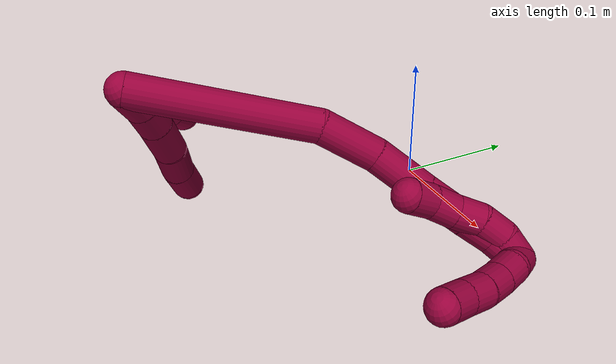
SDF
<sdf version="1.7">
 <world name="default">
  <model name="8">
   <static>0</static>
   <link name="8">
    <collision name="collision-cylinder-e_1_2_8">
     <pose>-0.002499 -0.002002 -0.010914 2.96015 -0.221554 -1.77051</pose>
     <geometry><cylinder><radius>0.0125</radius><length>0.022748</length></cylinder></geometry>
     <surface>
      <friction><ode><mu>1.16</mu><mu2>1.16</mu2><slip1>0</slip1><slip2>0</slip2></ode></friction>
      <contact><ode><kp>1e+06</kp><kd>1</kd><max_vel>0</max_vel><min_depth>0.001</min_depth></ode></contact>
     </surface>
    </collision>
    <visual name="visual-cylinder-e_1_2_8">
     <pose>-0.002499 -0.002002 -0.010914 2.96015 -0.221554 -1.77051</pose>
     <geometry><cylinder><radius>0.0125</radius><length>0.022748</length></cylinder></geometry>
     <material><ambient>0.584314 0 0.227451 1</ambient></material>
    </visual>
    <collision name="collision-cylinder-e_2_8_9">
     <pose>-0.006912 -0.007526 -0.032811 2.8313 -0.164346 -0.969365</pose>
     <geometry><cylinder><radius>0.0125</radius><length>0.023383</length></cylinder></geometry>
     <surface>
      <friction><ode><mu>1.16</mu><mu2>1.16</mu2><slip1>0</slip1><slip2>0</slip2></ode></friction>
      <contact><ode><kp>1e+06</kp><kd>1</kd><max_vel>0</max_vel><min_depth>0.001</min_depth></ode></contact>
     </surface>
    </collision>
    <visual name="visual-cylinder-e_2_8_9">
     <pose>-0.006912 -0.007526 -0.032811 2.8313 -0.164346 -0.969365</pose>
     <geometry><cylinder><radius>0.0125</radius><length>0.023383</length></cylinder></geometry>
     <material><ambient>0.584314 0 0.227451 1</ambient></material>
    </visual>
    <collision name="collision-cylinder-e_3_9_10">
     <pose>-0.011516 -0.017166 -0.059979 2.78017 -0.154346 -0.800744</pose>
     <geometry><cylinder><radius>0.0125</radius><length>0.035021</length></cylinder></geometry>
     <surface>
      <friction><ode><mu>1.16</mu><mu2>1.16</mu2><slip1>0</slip1><slip2>0</slip2></ode></friction>
      <contact><ode><kp>1e+06</kp><kd>1</kd><max_vel>0</max_vel><min_depth>0.001</min_depth></ode></contact>
     </surface>
    </collision>
    <visual name="visual-cylinder-e_3_9_10">
     <pose>-0.011516 -0.017166 -0.059979 2.78017 -0.154346 -0.800744</pose>
     <geometry><cylinder><radius>0.0125</radius><length>0.035021</length></cylinder></geometry>
     <material><ambient>0.584314 0 0.227451 1</ambient></material>
    </visual>
    <collision name="collision-cylinder-e_4_10_11">
     <pose>-0.017413 -0.031551 -0.091371 2.64367 -0.183075 -0.692988</pose>
     <geometry><cylinder><radius>0.0125</radius><length>0.035207</length></cylinder></geometry>
     <surface>
      <friction><ode><mu>1.16</mu><mu2>1.16</mu2><slip1>0</slip1><slip2>0</slip2></ode></friction>
      <contact><ode><kp>1e+06</kp><kd>1</kd><max_vel>0</max_vel><min_depth>0.001</min_depth></ode></contact>
     </surface>
    </collision>
    <visual name="visual-cylinder-e_4_10_11">
     <pose>-0.017413 -0.031551 -0.091371 2.64367 -0.183075 -0.692988</pose>
     <geometry><cylinder><radius>0.0125</radius><length>0.035207</length></cylinder></geometry>
     <material><ambient>0.584314 0 0.227451 1</ambient></material>
    </visual>
    <collision name="collision-cylinder-e_5_11_6">
     <pose>-0.02471 -0.046401 -0.121507 2.72631 -0.24576 -1.06043</pose>
     <geometry><cylinder><radius>0.0125</radius><length>0.033641</length></cylinder></geometry>
     <surface>
      <friction><ode><mu>1.16</mu><mu2>1.16</mu2><slip1>0</slip1><slip2>0</slip2></ode></friction>
      <contact><ode><kp>1e+06</kp><kd>1</kd><max_vel>0</max_vel><min_depth>0.001</min_depth></ode></contact>
     </surface>
    </collision>
    <visual name="visual-cylinder-e_5_11_6">
     <pose>-0.02471 -0.046401 -0.121507 2.72631 -0.24576 -1.06043</pose>
     <geometry><cylinder><radius>0.0125</radius><length>0.033641</length></cylinder></geometry>
     <material><ambient>0.584314 0 0.227451 1</ambient></material>
    </visual>
    <collision name="collision-cylinder-e_1_2_12">
     <pose>-0.020941 -0.011491 -0.031667 2.79351 -0.556176 -2.03759</pose>
     <geometry><cylinder><radius>0.0125</radius><length>0.079331</length></cylinder></geometry>
     <surface>
      <friction><ode><mu>1.16</mu><mu2>1.16</mu2><slip1>0</slip1><slip2>0</slip2></ode></friction>
      <contact><ode><kp>1e+06</kp><kd>1</kd><max_vel>0</max_vel><min_depth>0.001</min_depth></ode></contact>
     </surface>
    </collision>
    <visual name="visual-cylinder-e_1_2_12">
     <pose>-0.020941 -0.011491 -0.031667 2.79351 -0.556176 -2.03759</pose>
     <geometry><cylinder><radius>0.0125</radius><length>0.079331</length></cylinder></geometry>
     <material><ambient>0.584314 0 0.227451 1</ambient></material>
    </visual>
    <collision name="collision-cylinder-e_2_12_5">
     <pose>-0.047345 -0.024704 -0.071935 2.94387 -0.556953 -2.47375</pose>
     <geometry><cylinder><radius>0.0125</radius><length>0.020669</length></cylinder></geometry>
     <surface>
      <friction><ode><mu>1.16</mu><mu2>1.16</mu2><slip1>0</slip1><slip2>0</slip2></ode></friction>
      <contact><ode><kp>1e+06</kp><kd>1</kd><max_vel>0</max_vel><min_depth>0.001</min_depth></ode></contact>
     </surface>
    </collision>
    <visual name="visual-cylinder-e_2_12_5">
     <pose>-0.047345 -0.024704 -0.071935 2.94387 -0.556953 -2.47375</pose>
     <geometry><cylinder><radius>0.0125</radius><length>0.020669</length></cylinder></geometry>
     <material><ambient>0.584314 0 0.227451 1</ambient></material>
    </visual>
    <collision name="collision-cylinder-e_1_2_13">
     <pose>-0.007246 0.049036 -0.042707 -2.28733 -0.110973 0.242864</pose>
     <geometry><cylinder><radius>0.0125</radius><length>0.130857</length></cylinder></geometry>
     <surface>
      <friction><ode><mu>1.16</mu><mu2>1.16</mu2><slip1>0</slip1><slip2>0</slip2></ode></friction>
      <contact><ode><kp>1e+06</kp><kd>1</kd><max_vel>0</max_vel><min_depth>0.001</min_depth></ode></contact>
     </surface>
    </collision>
    <visual name="visual-cylinder-e_1_2_13">
     <pose>-0.007246 0.049036 -0.042707 -2.28733 -0.110973 0.242864</pose>
     <geometry><cylinder><radius>0.0125</radius><length>0.130857</length></cylinder></geometry>
     <material><ambient>0.584314 0 0.227451 1</ambient></material>
    </visual>
    <collision name="collision-cylinder-e_2_13_14">
     <pose>-0.011709 0.111792 -0.102334 -2.4602 0.127051 -0.355078</pose>
     <geometry><cylinder><radius>0.0125</radius><length>0.04392</length></cylinder></geometry>
     <surface>
      <friction><ode><mu>1.16</mu><mu2>1.16</mu2><slip1>0</slip1><slip2>0</slip2></ode></friction>
      <contact><ode><kp>1e+06</kp><kd>1</kd><max_vel>0</max_vel><min_depth>0.001</min_depth></ode></contact>
     </surface>
    </collision>
    <visual name="visual-cylinder-e_2_13_14">
     <pose>-0.011709 0.111792 -0.102334 -2.4602 0.127051 -0.355078</pose>
     <geometry><cylinder><radius>0.0125</radius><length>0.04392</length></cylinder></geometry>
     <material><ambient>0.584314 0 0.227451 1</ambient></material>
    </visual>
    <collision name="collision-cylinder-e_3_14_15">
     <pose>-0.002442 0.137777 -0.135401 -2.49204 0.309524 -0.867806</pose>
     <geometry><cylinder><radius>0.0125</radius><length>0.04258</length></cylinder></geometry>
     <surface>
      <friction><ode><mu>1.16</mu><mu2>1.16</mu2><slip1>0</slip1><slip2>0</slip2></ode></friction>
      <contact><ode><kp>1e+06</kp><kd>1</kd><max_vel>0</max_vel><min_depth>0.001</min_depth></ode></contact>
     </surface>
    </collision>
    <visual name="visual-cylinder-e_3_14_15">
     <pose>-0.002442 0.137777 -0.135401 -2.49204 0.309524 -0.867806</pose>
     <geometry><cylinder><radius>0.0125</radius><length>0.04258</length></cylinder></geometry>
     <material><ambient>0.584314 0 0.227451 1</ambient></material>
    </visual>
    <collision name="collision-cylinder-e_4_15_16">
     <pose>0.01042 0.161376 -0.163712 -2.39144 0.366269 -0.879398</pose>
     <geometry><cylinder><radius>0.0125</radius><length>0.03561</length></cylinder></geometry>
     <surface>
      <friction><ode><mu>1.16</mu><mu2>1.16</mu2><slip1>0</slip1><slip2>0</slip2></ode></friction>
      <contact><ode><kp>1e+06</kp><kd>1</kd><max_vel>0</max_vel><min_depth>0.001</min_depth></ode></contact>
     </surface>
    </collision>
    <visual name="visual-cylinder-e_4_15_16">
     <pose>0.01042 0.161376 -0.163712 -2.39144 0.366269 -0.879398</pose>
     <geometry><cylinder><radius>0.0125</radius><length>0.03561</length></cylinder></geometry>
     <material><ambient>0.584314 0 0.227451 1</ambient></material>
    </visual>
    <collision name="collision-cylinder-e_5_16_17">
     <pose>0.02047 0.180122 -0.183624 -2.37845 0.33 -0.786749</pose>
     <geometry><cylinder><radius>0.0125</radius><length>0.022671</length></cylinder></geometry>
     <surface>
      <friction><ode><mu>1.16</mu><mu2>1.16</mu2><slip1>0</slip1><slip2>0</slip2></ode></friction>
      <contact><ode><kp>1e+06</kp><kd>1</kd><max_vel>0</max_vel><min_depth>0.001</min_depth></ode></contact>
     </surface>
    </collision>
    <visual name="visual-cylinder-e_5_16_17">
     <pose>0.02047 0.180122 -0.183624 -2.37845 0.33 -0.786749</pose>
     <geometry><cylinder><radius>0.0125</radius><length>0.022671</length></cylinder></geometry>
     <material><ambient>0.584314 0 0.227451 1</ambient></material>
    </visual>
    <collision name="collision-cylinder-e_6_17_1">
     <pose>0.029171 0.194594 -0.199932 -2.45186 0.425498 -1.08283</pose>
     <geometry><cylinder><radius>0.0125</radius><length>0.02436</length></cylinder></geometry>
     <surface>
      <friction><ode><mu>1.16</mu><mu2>1.16</mu2><slip1>0</slip1><slip2>0</slip2></ode></friction>
      <contact><ode><kp>1e+06</kp><kd>1</kd><max_vel>0</max_vel><min_depth>0.001</min_depth></ode></contact>
     </surface>
    </collision>
    <visual name="visual-cylinder-e_6_17_1">
     <pose>0.029171 0.194594 -0.199932 -2.45186 0.425498 -1.08283</pose>
     <geometry><cylinder><radius>0.0125</radius><length>0.02436</length></cylinder></geometry>
     <material><ambient>0.584314 0 0.227451 1</ambient></material>
    </visual>
    <collision name="collision-cylinder-e_1_1_18">
     <pose>0.029207 0.198258 -0.200518 0.402627 -0.522618 -0.109042</pose>
     <geometry><cylinder><radius>0.0125</radius><length>0.02</length></cylinder></geometry>
     <surface>
      <friction><ode><mu>1.16</mu><mu2>1.16</mu2><slip1>0</slip1><slip2>0</slip2></ode></friction>
      <contact><ode><kp>1e+06</kp><kd>1</kd><max_vel>0</max_vel><min_depth>0.001</min_depth></ode></contact>
     </surface>
    </collision>
    <visual name="visual-cylinder-e_1_1_18">
     <pose>0.029207 0.198258 -0.200518 0.402627 -0.522618 -0.109042</pose>
     <geometry><cylinder><radius>0.0125</radius><length>0.02</length></cylinder></geometry>
     <material><ambient>0.584314 0 0.227451 1</ambient></material>
    </visual>
    <collision name="collision-cylinder-e_2_18_19">
     <pose>0.021336 0.189176 -0.184841 0.635813 -0.292138 -0.096747</pose>
     <geometry><cylinder><radius>0.0125</radius><length>0.02</length></cylinder></geometry>
     <surface>
      <friction><ode><mu>1.16</mu><mu2>1.16</mu2><slip1>0</slip1><slip2>0</slip2></ode></friction>
      <contact><ode><kp>1e+06</kp><kd>1</kd><max_vel>0</max_vel><min_depth>0.001</min_depth></ode></contact>
     </surface>
    </collision>
    <visual name="visual-cylinder-e_2_18_19">
     <pose>0.021336 0.189176 -0.184841 0.635813 -0.292138 -0.096747</pose>
     <geometry><cylinder><radius>0.0125</radius><length>0.02</length></cylinder></geometry>
     <material><ambient>0.584314 0 0.227451 1</ambient></material>
    </visual>
    <collision name="collision-cylinder-e_3_19_20">
     <pose>0.01781 0.176133 -0.170393 0.828829 -0.064608 -0.028429</pose>
     <geometry><cylinder><radius>0.0125</radius><length>0.02</length></cylinder></geometry>
     <surface>
      <friction><ode><mu>1.16</mu><mu2>1.16</mu2><slip1>0</slip1><slip2>0</slip2></ode></friction>
      <contact><ode><kp>1e+06</kp><kd>1</kd><max_vel>0</max_vel><min_depth>0.001</min_depth></ode></contact>
     </surface>
    </collision>
    <visual name="visual-cylinder-e_3_19_20">
     <pose>0.01781 0.176133 -0.170393 0.828829 -0.064608 -0.028429</pose>
     <geometry><cylinder><radius>0.0125</radius><length>0.02</length></cylinder></geometry>
     <material><ambient>0.584314 0 0.227451 1</ambient></material>
    </visual>
    <collision name="collision-cylinder-e_4_20_21">
     <pose>0.016886 0.162677 -0.155731 0.656416 -0.027814 -0.009472</pose>
     <geometry><cylinder><radius>0.0125</radius><length>0.02</length></cylinder></geometry>
     <surface>
      <friction><ode><mu>1.16</mu><mu2>1.16</mu2><slip1>0</slip1><slip2>0</slip2></ode></friction>
      <contact><ode><kp>1e+06</kp><kd>1</kd><max_vel>0</max_vel><min_depth>0.001</min_depth></ode></contact>
     </surface>
    </collision>
    <visual name="visual-cylinder-e_4_20_21">
     <pose>0.016886 0.162677 -0.155731 0.656416 -0.027814 -0.009472</pose>
     <geometry><cylinder><radius>0.0125</radius><length>0.02</length></cylinder></geometry>
     <material><ambient>0.584314 0 0.227451 1</ambient></material>
    </visual>
    <collision name="collision-cylinder-e_5_21_4">
     <pose>0.019248 0.152153 -0.139241 0.476451 0.26717 0.065244</pose>
     <geometry><cylinder><radius>0.0125</radius><length>0.02</length></cylinder></geometry>
     <surface>
      <friction><ode><mu>1.16</mu><mu2>1.16</mu2><slip1>0</slip1><slip2>0</slip2></ode></friction>
      <contact><ode><kp>1e+06</kp><kd>1</kd><max_vel>0</max_vel><min_depth>0.001</min_depth></ode></contact>
     </surface>
    </collision>
    <visual name="visual-cylinder-e_5_21_4">
     <pose>0.019248 0.152153 -0.139241 0.476451 0.26717 0.065244</pose>
     <geometry><cylinder><radius>0.0125</radius><length>0.02</length></cylinder></geometry>
     <material><ambient>0.584314 0 0.227451 1</ambient></material>
    </visual>
    <collision name="collision-cylinder-e_1_1_22">
     <pose>0.04109 0.201013 -0.201272 0.088409 0.760274 0.035345</pose>
     <geometry><cylinder><radius>0.0125</radius><length>0.02</length></cylinder></geometry>
     <surface>
      <friction><ode><mu>1.16</mu><mu2>1.16</mu2><slip1>0</slip1><slip2>0</slip2></ode></friction>
      <contact><ode><kp>1e+06</kp><kd>1</kd><max_vel>0</max_vel><min_depth>0.001</min_depth></ode></contact>
     </surface>
    </collision>
    <visual name="visual-cylinder-e_1_1_22">
     <pose>0.04109 0.201013 -0.201272 0.088409 0.760274 0.035345</pose>
     <geometry><cylinder><radius>0.0125</radius><length>0.02</length></cylinder></geometry>
     <material><ambient>0.584314 0 0.227451 1</ambient></material>
    </visual>
    <collision name="collision-cylinder-e_2_22_23">
     <pose>0.055401 0.196772 -0.1884 0.567213 0.836033 0.257501</pose>
     <geometry><cylinder><radius>0.0125</radius><length>0.02</length></cylinder></geometry>
     <surface>
      <friction><ode><mu>1.16</mu><mu2>1.16</mu2><slip1>0</slip1><slip2>0</slip2></ode></friction>
      <contact><ode><kp>1e+06</kp><kd>1</kd><max_vel>0</max_vel><min_depth>0.001</min_depth></ode></contact>
     </surface>
    </collision>
    <visual name="visual-cylinder-e_2_22_23">
     <pose>0.055401 0.196772 -0.1884 0.567213 0.836033 0.257501</pose>
     <geometry><cylinder><radius>0.0125</radius><length>0.02</length></cylinder></geometry>
     <material><ambient>0.584314 0 0.227451 1</ambient></material>
    </visual>
    <collision name="collision-cylinder-e_3_23_24">
     <pose>0.069671 0.189729 -0.176324 0.491863 0.754597 0.198292</pose>
     <geometry><cylinder><radius>0.0125</radius><length>0.02</length></cylinder></geometry>
     <surface>
      <friction><ode><mu>1.16</mu><mu2>1.16</mu2><slip1>0</slip1><slip2>0</slip2></ode></friction>
      <contact><ode><kp>1e+06</kp><kd>1</kd><max_vel>0</max_vel><min_depth>0.001</min_depth></ode></contact>
     </surface>
    </collision>
    <visual name="visual-cylinder-e_3_23_24">
     <pose>0.069671 0.189729 -0.176324 0.491863 0.754597 0.198292</pose>
     <geometry><cylinder><radius>0.0125</radius><length>0.02</length></cylinder></geometry>
     <material><ambient>0.584314 0 0.227451 1</ambient></material>
    </visual>
    <collision name="collision-cylinder-e_4_24_25">
     <pose>0.082266 0.181976 -0.162945 0.554906 0.611978 0.179459</pose>
     <geometry><cylinder><radius>0.0125</radius><length>0.02</length></cylinder></geometry>
     <surface>
      <friction><ode><mu>1.16</mu><mu2>1.16</mu2><slip1>0</slip1><slip2>0</slip2></ode></friction>
      <contact><ode><kp>1e+06</kp><kd>1</kd><max_vel>0</max_vel><min_depth>0.001</min_depth></ode></contact>
     </surface>
    </collision>
    <visual name="visual-cylinder-e_4_24_25">
     <pose>0.082266 0.181976 -0.162945 0.554906 0.611978 0.179459</pose>
     <geometry><cylinder><radius>0.0125</radius><length>0.02</length></cylinder></geometry>
     <material><ambient>0.584314 0 0.227451 1</ambient></material>
    </visual>
    <collision name="collision-cylinder-e_5_25_3">
     <pose>0.093948 0.17417 -0.148739 0.449028 0.635741 0.149994</pose>
     <geometry><cylinder><radius>0.0125</radius><length>0.02</length></cylinder></geometry>
     <surface>
      <friction><ode><mu>1.16</mu><mu2>1.16</mu2><slip1>0</slip1><slip2>0</slip2></ode></friction>
      <contact><ode><kp>1e+06</kp><kd>1</kd><max_vel>0</max_vel><min_depth>0.001</min_depth></ode></contact>
     </surface>
    </collision>
    <visual name="visual-cylinder-e_5_25_3">
     <pose>0.093948 0.17417 -0.148739 0.449028 0.635741 0.149994</pose>
     <geometry><cylinder><radius>0.0125</radius><length>0.02</length></cylinder></geometry>
     <material><ambient>0.584314 0 0.227451 1</ambient></material>
    </visual>
    <collision name="collision-sphere-3">
     <pose>0.099886 0.170678 -0.141491 0 -0 0</pose>
     <geometry><sphere><radius>0.0125</radius></sphere></geometry>
     <surface>
      <friction><ode><mu>1.16</mu><mu2>1.16</mu2><slip1>0</slip1><slip2>0</slip2></ode></friction>
      <contact><ode><kp>1e+06</kp><kd>1</kd><max_vel>0</max_vel><min_depth>0.001</min_depth></ode></contact>
     </surface>
    </collision>
    <visual name="visual-sphere-3">
     <pose>0.099886 0.170678 -0.141491 0 -0 0</pose>
     <geometry><sphere><radius>0.0125</radius></sphere></geometry>
     <material><ambient>0.584314 0 0.227451 1</ambient></material>
    </visual>
    <collision name="collision-sphere-25">
     <pose>0.08801 0.177663 -0.155988 0 -0 0</pose>
     <geometry><sphere><radius>0.0125</radius></sphere></geometry>
     <surface>
      <friction><ode><mu>1.16</mu><mu2>1.16</mu2><slip1>0</slip1><slip2>0</slip2></ode></friction>
      <contact><ode><kp>1e+06</kp><kd>1</kd><max_vel>0</max_vel><min_depth>0.001</min_depth></ode></contact>
     </surface>
    </collision>
    <visual name="visual-sphere-25">
     <pose>0.08801 0.177663 -0.155988 0 -0 0</pose>
     <geometry><sphere><radius>0.0125</radius></sphere></geometry>
     <material><ambient>0.584314 0 0.227451 1</ambient></material>
    </visual>
    <collision name="collision-sphere-24">
     <pose>0.076521 0.186288 -0.169902 0 -0 0</pose>
     <geometry><sphere><radius>0.0125</radius></sphere></geometry>
     <surface>
      <friction><ode><mu>1.16</mu><mu2>1.16</mu2><slip1>0</slip1><slip2>0</slip2></ode></friction>
      <contact><ode><kp>1e+06</kp><kd>1</kd><max_vel>0</max_vel><min_depth>0.001</min_depth></ode></contact>
     </surface>
    </collision>
    <visual name="visual-sphere-24">
     <pose>0.076521 0.186288 -0.169902 0 -0 0</pose>
     <geometry><sphere><radius>0.0125</radius></sphere></geometry>
     <material><ambient>0.584314 0 0.227451 1</ambient></material>
    </visual>
    <collision name="collision-sphere-23">
     <pose>0.062821 0.19317 -0.182746 0 -0 0</pose>
     <geometry><sphere><radius>0.0125</radius></sphere></geometry>
     <surface>
      <friction><ode><mu>1.16</mu><mu2>1.16</mu2><slip1>0</slip1><slip2>0</slip2></ode></friction>
      <contact><ode><kp>1e+06</kp><kd>1</kd><max_vel>0</max_vel><min_depth>0.001</min_depth></ode></contact>
     </surface>
    </collision>
    <visual name="visual-sphere-23">
     <pose>0.062821 0.19317 -0.182746 0 -0 0</pose>
     <geometry><sphere><radius>0.0125</radius></sphere></geometry>
     <material><ambient>0.584314 0 0.227451 1</ambient></material>
    </visual>
    <collision name="collision-sphere-22">
     <pose>0.047981 0.200374 -0.194054 0 -0 0</pose>
     <geometry><sphere><radius>0.0125</radius></sphere></geometry>
     <surface>
      <friction><ode><mu>1.16</mu><mu2>1.16</mu2><slip1>0</slip1><slip2>0</slip2></ode></friction>
      <contact><ode><kp>1e+06</kp><kd>1</kd><max_vel>0</max_vel><min_depth>0.001</min_depth></ode></contact>
     </surface>
    </collision>
    <visual name="visual-sphere-22">
     <pose>0.047981 0.200374 -0.194054 0 -0 0</pose>
     <geometry><sphere><radius>0.0125</radius></sphere></geometry>
     <material><ambient>0.584314 0 0.227451 1</ambient></material>
    </visual>
    <collision name="collision-sphere-4">
     <pose>0.021888 0.147729 -0.13067 0 -0 0</pose>
     <geometry><sphere><radius>0.0125</radius></sphere></geometry>
     <surface>
      <friction><ode><mu>1.16</mu><mu2>1.16</mu2><slip1>0</slip1><slip2>0</slip2></ode></friction>
      <contact><ode><kp>1e+06</kp><kd>1</kd><max_vel>0</max_vel><min_depth>0.001</min_depth></ode></contact>
     </surface>
    </collision>
    <visual name="visual-sphere-4">
     <pose>0.021888 0.147729 -0.13067 0 -0 0</pose>
     <geometry><sphere><radius>0.0125</radius></sphere></geometry>
     <material><ambient>0.584314 0 0.227451 1</ambient></material>
    </visual>
    <collision name="collision-sphere-21">
     <pose>0.016608 0.156576 -0.147812 0 -0 0</pose>
     <geometry><sphere><radius>0.0125</radius></sphere></geometry>
     <surface>
      <friction><ode><mu>1.16</mu><mu2>1.16</mu2><slip1>0</slip1><slip2>0</slip2></ode></friction>
      <contact><ode><kp>1e+06</kp><kd>1</kd><max_vel>0</max_vel><min_depth>0.001</min_depth></ode></contact>
     </surface>
    </collision>
    <visual name="visual-sphere-21">
     <pose>0.016608 0.156576 -0.147812 0 -0 0</pose>
     <geometry><sphere><radius>0.0125</radius></sphere></geometry>
     <material><ambient>0.584314 0 0.227451 1</ambient></material>
    </visual>
    <collision name="collision-sphere-20">
     <pose>0.017164 0.168777 -0.163649 0 -0 0</pose>
     <geometry><sphere><radius>0.0125</radius></sphere></geometry>
     <surface>
      <friction><ode><mu>1.16</mu><mu2>1.16</mu2><slip1>0</slip1><slip2>0</slip2></ode></friction>
      <contact><ode><kp>1e+06</kp><kd>1</kd><max_vel>0</max_vel><min_depth>0.001</min_depth></ode></contact>
     </surface>
    </collision>
    <visual name="visual-sphere-20">
     <pose>0.017164 0.168777 -0.163649 0 -0 0</pose>
     <geometry><sphere><radius>0.0125</radius></sphere></geometry>
     <material><ambient>0.584314 0 0.227451 1</ambient></material>
    </visual>
    <collision name="collision-sphere-6">
     <pose>-0.028803 -0.052983 -0.136435 0 -0 0</pose>
     <geometry><sphere><radius>0.0125</radius></sphere></geometry>
     <surface>
      <friction><ode><mu>1.16</mu><mu2>1.16</mu2><slip1>0</slip1><slip2>0</slip2></ode></friction>
      <contact><ode><kp>1e+06</kp><kd>1</kd><max_vel>0</max_vel><min_depth>0.001</min_depth></ode></contact>
     </surface>
    </collision>
    <visual name="visual-sphere-6">
     <pose>-0.028803 -0.052983 -0.136435 0 -0 0</pose>
     <geometry><sphere><radius>0.0125</radius></sphere></geometry>
     <material><ambient>0.584314 0 0.227451 1</ambient></material>
    </visual>
    <collision name="collision-sphere-11">
     <pose>-0.020618 -0.039818 -0.106578 0 -0 0</pose>
     <geometry><sphere><radius>0.0125</radius></sphere></geometry>
     <surface>
      <friction><ode><mu>1.16</mu><mu2>1.16</mu2><slip1>0</slip1><slip2>0</slip2></ode></friction>
      <contact><ode><kp>1e+06</kp><kd>1</kd><max_vel>0</max_vel><min_depth>0.001</min_depth></ode></contact>
     </surface>
    </collision>
    <visual name="visual-sphere-11">
     <pose>-0.020618 -0.039818 -0.106578 0 -0 0</pose>
     <geometry><sphere><radius>0.0125</radius></sphere></geometry>
     <material><ambient>0.584314 0 0.227451 1</ambient></material>
    </visual>
    <collision name="collision-sphere-10">
     <pose>-0.014208 -0.023285 -0.076163 0 -0 0</pose>
     <geometry><sphere><radius>0.0125</radius></sphere></geometry>
     <surface>
      <friction><ode><mu>1.16</mu><mu2>1.16</mu2><slip1>0</slip1><slip2>0</slip2></ode></friction>
      <contact><ode><kp>1e+06</kp><kd>1</kd><max_vel>0</max_vel><min_depth>0.001</min_depth></ode></contact>
     </surface>
    </collision>
    <visual name="visual-sphere-10">
     <pose>-0.014208 -0.023285 -0.076163 0 -0 0</pose>
     <geometry><sphere><radius>0.0125</radius></sphere></geometry>
     <material><ambient>0.584314 0 0.227451 1</ambient></material>
    </visual>
    <collision name="collision-sphere-9">
     <pose>-0.008825 -0.011048 -0.043795 0 -0 0</pose>
     <geometry><sphere><radius>0.0125</radius></sphere></geometry>
     <surface>
      <friction><ode><mu>1.16</mu><mu2>1.16</mu2><slip1>0</slip1><slip2>0</slip2></ode></friction>
      <contact><ode><kp>1e+06</kp><kd>1</kd><max_vel>0</max_vel><min_depth>0.001</min_depth></ode></contact>
     </surface>
    </collision>
    <visual name="visual-sphere-9">
     <pose>-0.008825 -0.011048 -0.043795 0 -0 0</pose>
     <geometry><sphere><radius>0.0125</radius></sphere></geometry>
     <material><ambient>0.584314 0 0.227451 1</ambient></material>
    </visual>
    <collision name="collision-sphere-2">
     <geometry><sphere><radius>0.0125</radius></sphere></geometry>
     <surface>
      <friction><ode><mu>1.16</mu><mu2>1.16</mu2><slip1>0</slip1><slip2>0</slip2></ode></friction>
      <contact><ode><kp>1e+06</kp><kd>1</kd><max_vel>0</max_vel><min_depth>0.001</min_depth></ode></contact>
     </surface>
    </collision>
    <visual name="visual-sphere-2">
     <geometry><sphere><radius>0.0125</radius></sphere></geometry>
     <material><ambient>0.584314 0 0.227451 1</ambient></material>
    </visual>
    <collision name="collision-sphere-19">
     <pose>0.018456 0.183489 -0.177136 0 -0 0</pose>
     <geometry><sphere><radius>0.0125</radius></sphere></geometry>
     <surface>
      <friction><ode><mu>1.16</mu><mu2>1.16</mu2><slip1>0</slip1><slip2>0</slip2></ode></friction>
      <contact><ode><kp>1e+06</kp><kd>1</kd><max_vel>0</max_vel><min_depth>0.001</min_depth></ode></contact>
     </surface>
    </collision>
    <visual name="visual-sphere-19">
     <pose>0.018456 0.183489 -0.177136 0 -0 0</pose>
     <geometry><sphere><radius>0.0125</radius></sphere></geometry>
     <material><ambient>0.584314 0 0.227451 1</ambient></material>
    </visual>
    <collision name="collision-sphere-8">
     <pose>-0.004999 -0.004005 -0.021828 0 -0 0</pose>
     <geometry><sphere><radius>0.0125</radius></sphere></geometry>
     <surface>
      <friction><ode><mu>1.16</mu><mu2>1.16</mu2><slip1>0</slip1><slip2>0</slip2></ode></friction>
      <contact><ode><kp>1e+06</kp><kd>1</kd><max_vel>0</max_vel><min_depth>0.001</min_depth></ode></contact>
     </surface>
    </collision>
    <visual name="visual-sphere-8">
     <pose>-0.004999 -0.004005 -0.021828 0 -0 0</pose>
     <geometry><sphere><radius>0.0125</radius></sphere></geometry>
     <material><ambient>0.584314 0 0.227451 1</ambient></material>
    </visual>
    <collision name="collision-sphere-12">
     <pose>-0.041882 -0.022981 -0.063334 0 -0 0</pose>
     <geometry><sphere><radius>0.0125</radius></sphere></geometry>
     <surface>
      <friction><ode><mu>1.16</mu><mu2>1.16</mu2><slip1>0</slip1><slip2>0</slip2></ode></friction>
      <contact><ode><kp>1e+06</kp><kd>1</kd><max_vel>0</max_vel><min_depth>0.001</min_depth></ode></contact>
     </surface>
    </collision>
    <visual name="visual-sphere-12">
     <pose>-0.041882 -0.022981 -0.063334 0 -0 0</pose>
     <geometry><sphere><radius>0.0125</radius></sphere></geometry>
     <material><ambient>0.584314 0 0.227451 1</ambient></material>
    </visual>
    <collision name="collision-sphere-5">
     <pose>-0.052808 -0.026428 -0.080537 0 -0 0</pose>
     <geometry><sphere><radius>0.0125</radius></sphere></geometry>
     <surface>
      <friction><ode><mu>1.16</mu><mu2>1.16</mu2><slip1>0</slip1><slip2>0</slip2></ode></friction>
      <contact><ode><kp>1e+06</kp><kd>1</kd><max_vel>0</max_vel><min_depth>0.001</min_depth></ode></contact>
     </surface>
    </collision>
    <visual name="visual-sphere-5">
     <pose>-0.052808 -0.026428 -0.080537 0 -0 0</pose>
     <geometry><sphere><radius>0.0125</radius></sphere></geometry>
     <material><ambient>0.584314 0 0.227451 1</ambient></material>
    </visual>
    <collision name="collision-sphere-13">
     <pose>-0.014492 0.098071 -0.085415 0 -0 0</pose>
     <geometry><sphere><radius>0.0125</radius></sphere></geometry>
     <surface>
      <friction><ode><mu>1.16</mu><mu2>1.16</mu2><slip1>0</slip1><slip2>0</slip2></ode></friction>
      <contact><ode><kp>1e+06</kp><kd>1</kd><max_vel>0</max_vel><min_depth>0.001</min_depth></ode></contact>
     </surface>
    </collision>
    <visual name="visual-sphere-13">
     <pose>-0.014492 0.098071 -0.085415 0 -0 0</pose>
     <geometry><sphere><radius>0.0125</radius></sphere></geometry>
     <material><ambient>0.584314 0 0.227451 1</ambient></material>
    </visual>
    <collision name="collision-sphere-14">
     <pose>-0.008927 0.125512 -0.119252 0 -0 0</pose>
     <geometry><sphere><radius>0.0125</radius></sphere></geometry>
     <surface>
      <friction><ode><mu>1.16</mu><mu2>1.16</mu2><slip1>0</slip1><slip2>0</slip2></ode></friction>
      <contact><ode><kp>1e+06</kp><kd>1</kd><max_vel>0</max_vel><min_depth>0.001</min_depth></ode></contact>
     </surface>
    </collision>
    <visual name="visual-sphere-14">
     <pose>-0.008927 0.125512 -0.119252 0 -0 0</pose>
     <geometry><sphere><radius>0.0125</radius></sphere></geometry>
     <material><ambient>0.584314 0 0.227451 1</ambient></material>
    </visual>
    <collision name="collision-sphere-15">
     <pose>0.004043 0.150042 -0.15155 0 -0 0</pose>
     <geometry><sphere><radius>0.0125</radius></sphere></geometry>
     <surface>
      <friction><ode><mu>1.16</mu><mu2>1.16</mu2><slip1>0</slip1><slip2>0</slip2></ode></friction>
      <contact><ode><kp>1e+06</kp><kd>1</kd><max_vel>0</max_vel><min_depth>0.001</min_depth></ode></contact>
     </surface>
    </collision>
    <visual name="visual-sphere-15">
     <pose>0.004043 0.150042 -0.15155 0 -0 0</pose>
     <geometry><sphere><radius>0.0125</radius></sphere></geometry>
     <material><ambient>0.584314 0 0.227451 1</ambient></material>
    </visual>
    <collision name="collision-sphere-16">
     <pose>0.016797 0.172709 -0.175874 0 -0 0</pose>
     <geometry><sphere><radius>0.0125</radius></sphere></geometry>
     <surface>
      <friction><ode><mu>1.16</mu><mu2>1.16</mu2><slip1>0</slip1><slip2>0</slip2></ode></friction>
      <contact><ode><kp>1e+06</kp><kd>1</kd><max_vel>0</max_vel><min_depth>0.001</min_depth></ode></contact>
     </surface>
    </collision>
    <visual name="visual-sphere-16">
     <pose>0.016797 0.172709 -0.175874 0 -0 0</pose>
     <geometry><sphere><radius>0.0125</radius></sphere></geometry>
     <material><ambient>0.584314 0 0.227451 1</ambient></material>
    </visual>
    <collision name="collision-sphere-17">
     <pose>0.024143 0.187534 -0.191374 0 -0 0</pose>
     <geometry><sphere><radius>0.0125</radius></sphere></geometry>
     <surface>
      <friction><ode><mu>1.16</mu><mu2>1.16</mu2><slip1>0</slip1><slip2>0</slip2></ode></friction>
      <contact><ode><kp>1e+06</kp><kd>1</kd><max_vel>0</max_vel><min_depth>0.001</min_depth></ode></contact>
     </surface>
    </collision>
    <visual name="visual-sphere-17">
     <pose>0.024143 0.187534 -0.191374 0 -0 0</pose>
     <geometry><sphere><radius>0.0125</radius></sphere></geometry>
     <material><ambient>0.584314 0 0.227451 1</ambient></material>
    </visual>
    <collision name="collision-sphere-1">
     <pose>0.034199 0.201653 -0.20849 0 -0 0</pose>
     <geometry><sphere><radius>0.0125</radius></sphere></geometry>
     <surface>
      <friction><ode><mu>1.16</mu><mu2>1.16</mu2><slip1>0</slip1><slip2>0</slip2></ode></friction>
      <contact><ode><kp>1e+06</kp><kd>1</kd><max_vel>0</max_vel><min_depth>0.001</min_depth></ode></contact>
     </surface>
    </collision>
    <visual name="visual-sphere-1">
     <pose>0.034199 0.201653 -0.20849 0 -0 0</pose>
     <geometry><sphere><radius>0.0125</radius></sphere></geometry>
     <material><ambient>0.584314 0 0.227451 1</ambient></material>
    </visual>
    <collision name="collision-sphere-18">
     <pose>0.024216 0.194863 -0.192546 0 -0 0</pose>
     <geometry><sphere><radius>0.0125</radius></sphere></geometry>
     <surface>
      <friction><ode><mu>1.16</mu><mu2>1.16</mu2><slip1>0</slip1><slip2>0</slip2></ode></friction>
      <contact><ode><kp>1e+06</kp><kd>1</kd><max_vel>0</max_vel><min_depth>0.001</min_depth></ode></contact>
     </surface>
    </collision>
    <visual name="visual-sphere-18">
     <pose>0.024216 0.194863 -0.192546 0 -0 0</pose>
     <geometry><sphere><radius>0.0125</radius></sphere></geometry>
     <material><ambient>0.584314 0 0.227451 1</ambient></material>
    </visual>
    <inertial>
     <pose>0.005614 0.084384 -0.106266 0 -0 0</pose>
     <mass>0.75</mass>
     <inertia>
      <ixx>0.00019</ixx>
      <ixy>0</ixy>
      <ixz>0</ixz>
      <iyy>-0.000113</iyy>
      <iyz>0</iyz>
      <izz>-0.000117</izz>
     </inertia>
    </inertial>
   </link>
   <pose>0.022134 -0.238665 0.135148 0.384799 0.411282 -0.600874</pose>
  </model>
 </world>
</sdf>
